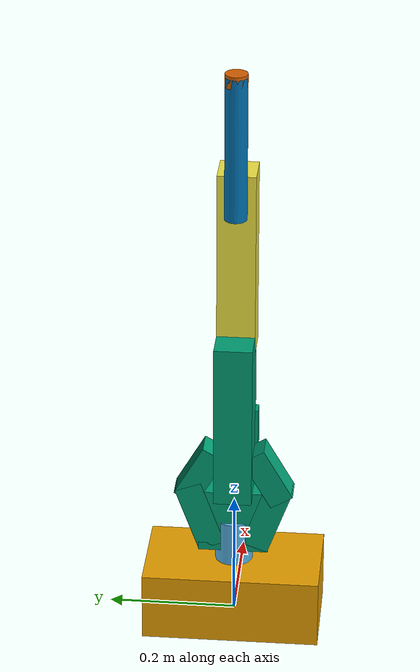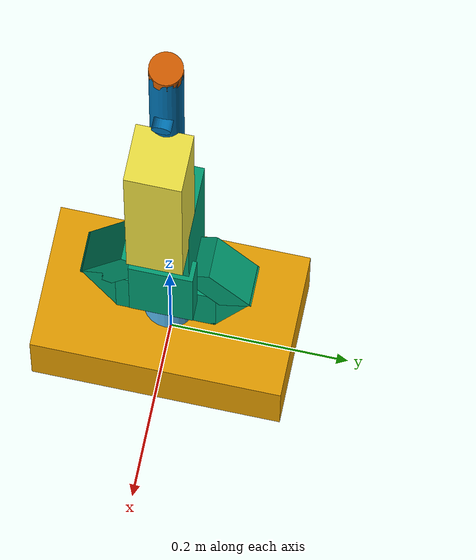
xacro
<?xml version="1.0"?>
<robot xmlns:xacro="http://www.ros.org/wiki/xacro" name="r12">
    <xacro:arg name="initial_positions_file" default="initial_positions.yaml" />

    <!-- Import r12 urdf file -->
    <xacro:include filename="$(find r12_config)/config/r12.urdf" />

    <!-- Import control_xacro -->
    <xacro:include filename="r12.ros2_control.xacro" />

    <xacro:r12_ros2_control name="FakeSystem" initial_positions_file="$(arg initial_positions_file)"/>

</robot>

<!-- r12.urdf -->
<robot name="r12">
	<link name="base_link">
		<visual>
			<origin rpy="0 0 0" xyz="0 0 0.04"/>
			<geometry>
				<box size="0.16 0.28 0.11"/>
			</geometry>
		</visual>
		<collision>
			<origin rpy="0 0 0" xyz="0 0 0.04"/>
			<geometry>
				<box size="0.16 0.28 0.11"/>
			</geometry>
		</collision>
	</link>

	<joint name="waist_joint" type="revolute">
		<parent link="base_link"/>
		<child link="waist_shoulder_link"/>
		<origin xyz="0 0 0.0925" rpy="0 0 0"/>
		<limit lower="-1.39626" upper="1.39626" effort="0.1" velocity="2"/>
		<axis xyz="0 0 -1"/>
	</joint>

	<link name="waist_shoulder_link">
		<visual>
			<origin rpy="0 0 0" xyz="0 0 0"/>
			<geometry>
				<cylinder radius="0.03" length="0.15"/>
			</geometry>
		</visual>
		<collision>
			<origin rpy="0 0 0" xyz="0 0 0"/>
			<geometry>
				<cylinder radius="0.03" length="0.15"/>
			</geometry>
		</collision>
	</link>

	<joint name="shoulder_joint" type="revolute">
		<parent link="waist_shoulder_link"/>
		<child link="shoulder_elbow_link"/>
		<origin xyz="0 0 0.2105" rpy="0 0 0"/>
		<limit lower="-1.57079" upper="0" effort="0.1" velocity="2"/>
		<axis xyz="-1 0 0"/>
	</joint>

	<link name="shoulder_elbow_link">
		<visual>
			<origin rpy="0 0 0" xyz="0 0 0.045"/>
			<geometry>
				<box size="0.08 0.06 0.27"/>
			</geometry>
		</visual>
		<visual>
			<origin rpy="0 0 0" xyz="0 0 -0.1325"/>
			<geometry>
				<box size="0.045 0.11094 0.105"/>
			</geometry>
		</visual>
		<visual>
			<origin rpy="0 0 0" xyz="0.03375 0 -0.03"/>
			<geometry>
				<box size="0.0225 0.07 0.15"/>
			</geometry>
		</visual>
		<visual>
			<origin rpy="-1.0472 0 0" xyz="0 0.053659 -0.053333"/>
			<geometry>
				<box size="0.045 0.092376 0.04"/>
			</geometry>
		</visual>
		<visual>
			<origin rpy="-0.349 0 0" xyz="0 0.053 -0.12506"/>
			<geometry>
				<box size="0.045 0.043403 0.111739"/>
			</geometry>
		</visual>
		<visual>
			<origin rpy="1.0472 0 0" xyz="0 -0.053659 -0.053333"/>
			<geometry>
				<box size="0.045 0.092376 0.04"/>
			</geometry>
		</visual>
		<visual>
			<origin rpy="0.349 0 0" xyz="0 -0.053 -0.12506"/>
			<geometry>
				<box size="0.045 0.043403 0.111739"/>
			</geometry>
		</visual>
		<collision>
			<origin rpy="0 0 0" xyz="0 0 0.045"/>
			<geometry>
				<box size="0.08 0.06 0.27"/>
			</geometry>
		</collision>
		<collision>
			<origin rpy="0 0 0" xyz="0 0 -0.1325"/>
			<geometry>
				<box size="0.045 0.11094 0.105"/>
			</geometry>
		</collision>
		<collision>
			<origin rpy="-1.0472 0 0" xyz="0 0.053659 -0.053333"/>
			<geometry>
				<box size="0.045 0.092376 0.04"/>
			</geometry>
		</collision>
		<collision>
			<origin rpy="-0.349 0 0" xyz="0 0.053 -0.12506"/>
			<geometry>
				<box size="0.045 0.043403 0.111739"/>
			</geometry>
		</collision>
		<collision>
			<origin rpy="1.0472 0 0" xyz="0 -0.053659 -0.053333"/>
			<geometry>
				<box size="0.045 0.092376 0.04"/>
			</geometry>
		</collision>
		<collision>
			<origin rpy="0.349 0 0" xyz="0 -0.053 -0.12506"/>
			<geometry>
				<box size="0.045 0.043403 0.111739"/>
			</geometry>
		</collision>
		<collision>
			<origin rpy="0 0 0" xyz="0.03375 0 -0.03"/>
			<geometry>
				<box size="0.0225 0.07 0.15"/>
			</geometry>
		</collision>
	</link>

	<joint name="elbow_joint" type="revolute">
		<parent link="shoulder_elbow_link"/>
		<child link="elbow_hand_link"/>
		<origin xyz="0.04 0 0.25" rpy="0 0 0"/>
		<limit lower="0" upper="1.57079" effort="0.1" velocity="2"/>
		<axis xyz="1 0 0"/>
	</joint>

	<link name="elbow_hand_link">
		<visual>
			<origin rpy="0 0 0" xyz="0 0 0.05"/>
			<geometry>
				<box size="0.06 0.06 0.3"/>
			</geometry>
		</visual>
		<visual>
			<origin rpy="0 -1.5708 0" xyz="-0.015 0 0"/>
			<geometry>
				<cylinder radius="0.02" length="0.005"/>
			</geometry>
		</visual>
		<collision>
			<origin rpy="0 0 0" xyz="0 0 0.05"/>
			<geometry>
				<box size="0.06 0.06 0.3"/>
			</geometry>
		</collision>
		<collision>
			<origin rpy="0 -1.5708 0" xyz="-0.015 0 0"/>
			<geometry>
				<cylinder radius="0.02" length="0.005"/>
			</geometry>
		</collision>
	</link>

	<joint name="hand_joint" type="revolute">
		<parent link="elbow_hand_link"/>
		<child link="hand_wrist_link"/>
		<origin xyz="-0.04 0 0.25" rpy="0 0 0"/>
		<limit lower="0" upper="1.57079" effort="0.1" velocity="2"/>
		<axis xyz="1 0 0"/>
	</joint>

	<link name="hand_wrist_link">
		<visual>
			<origin rpy="0 0 0" xyz="0 0 0"/>
			<geometry>
				<cylinder radius="0.0175" length="0.23"/>
			</geometry>
		</visual>
		<visual>
			<origin rpy="0 -1.5708 0" xyz="0.01375 0 0"/>
			<geometry>
				<cylinder radius="0.01" length="0.0275"/>
			</geometry>
		</visual>
		<collision>
			<origin rpy="0 0 0" xyz="0 0 0"/>
			<geometry>
				<cylinder radius="0.0175" length="0.23"/>
			</geometry>
		</collision>
		<collision>
			<origin rpy="0 -1.5708 0" xyz="0.01375 0 0"/>
			<geometry>
				<cylinder radius="0.01" length="0.0275"/>
			</geometry>
		</collision>
	</link>

	<joint name="wrist_joint" type="revolute">
		<parent link="hand_wrist_link"/>
		<child link="wrist_tool_link"/>
		<origin xyz="0 0 0.10" rpy="0 0 0"/>
		<limit lower="-3.14159" upper="3.14159" effort="0.1" velocity="0.005"/>
		<axis xyz="0 0 1"/>
	</joint>

	<link name="wrist_tool_link">
		<visual>
			<origin rpy="0 0 0" xyz="0 0 0.01"/>
			<geometry>
				<cylinder radius="0.0175" length="0.02"/>
			</geometry>
		</visual>
		<collision>
			<origin rpy="0 0 0" xyz="0 0 0.01"/>
			<geometry>
				<cylinder radius="0.0175" length="0.02"/>
			</geometry>
		</collision>
	</link>

</robot>
